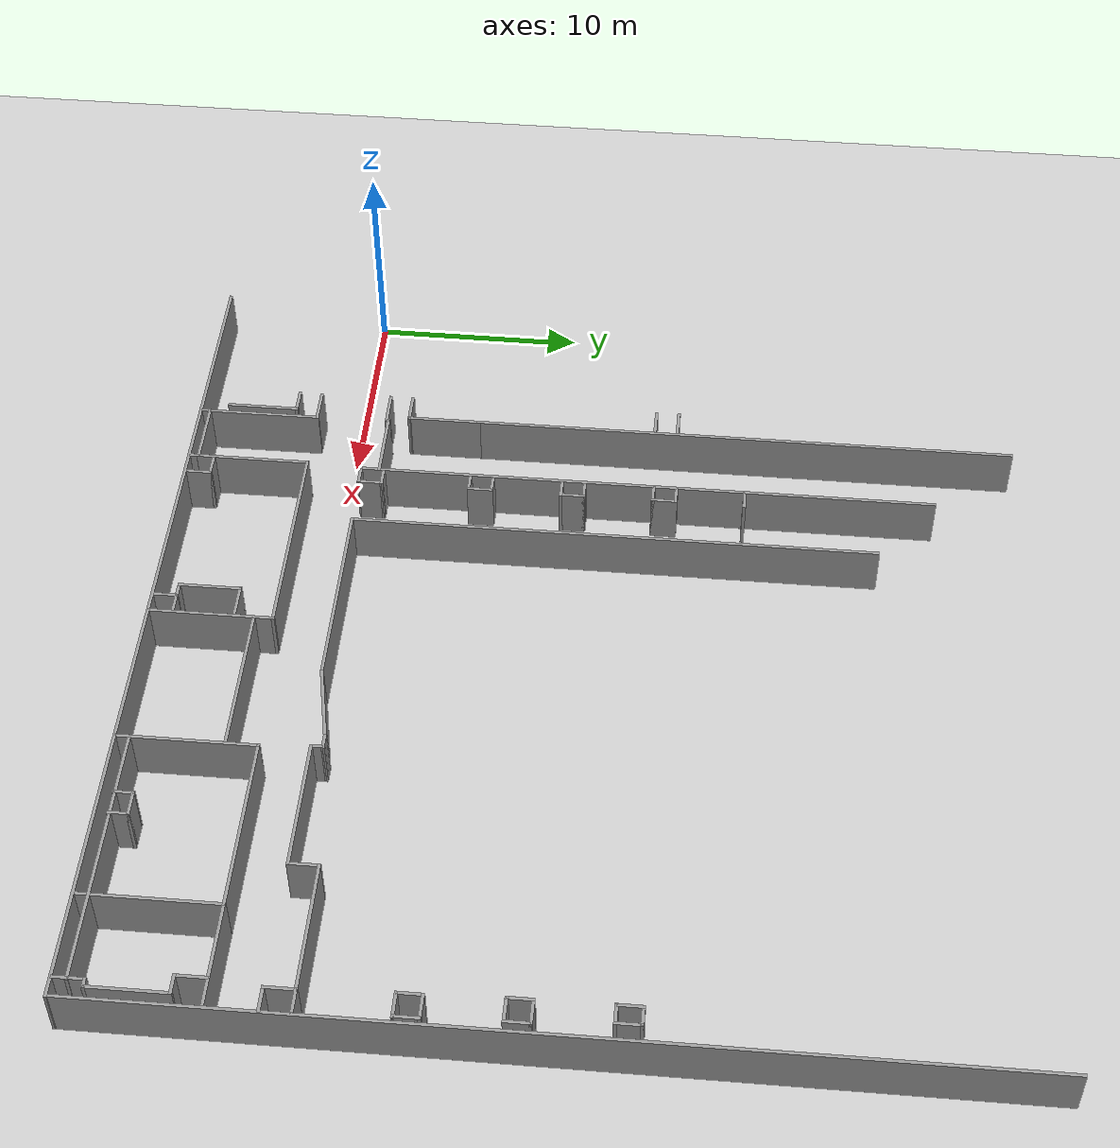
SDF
<sdf version="1.7">
 <world name="default">
  <model name="ground_plane">
   <static>1</static>
   <link name="link">
    <collision name="collision">
     <geometry><plane><normal>0 0 1</normal><size>100 100</size></plane></geometry>
     <surface>
      <contact><collide_bitmask>65535</collide_bitmask></contact>
      <friction><ode><mu>100</mu><mu2>50</mu2></ode></friction>
     </surface>
    </collision>
    <visual name="visual">
     <cast_shadows>0</cast_shadows>
     <geometry><plane><normal>0 0 1</normal><size>100 100</size></plane></geometry>
     <material>
      <script><uri>file://media/materials/scripts/gazebo.material</uri><name>Gazebo/Grey</name></script>
     </material>
    </visual>
   </link>
  </model>
  <model name="Tsudanuma_2-3-without_door">
   <pose>11.8595 12.3796 0 0 -0 0</pose>
   <link name="Wall_10">
    <collision name="Wall_10_Collision">
     <geometry><box><size>42.1591 0.15 2.5</size></box></geometry>
     <pose>0 0 1.25 0 -0 0</pose>
    </collision>
    <visual name="Wall_10_Visual">
     <pose>0 0 1.25 0 -0 0</pose>
     <geometry><box><size>42.1591 0.15 2.5</size></box></geometry>
     <material>
      <script><uri>file://media/materials/scripts/gazebo.material</uri><name>Gazebo/Grey</name></script>
      <ambient>1 1 1 1</ambient>
     </material>
     <meta><layer>0</layer></meta>
    </visual>
    <pose>9.87341 -20.1767 0 0 -0 -0.000631</pose>
   </link>
   <link name="Wall_11">
    <collision name="Wall_11_Collision">
     <geometry><box><size>42 0.15 2.5</size></box></geometry>
     <pose>0 0 1.25 0 -0 0</pose>
    </collision>
    <visual name="Wall_11_Visual">
     <pose>0 0 1.25 0 -0 0</pose>
     <geometry><box><size>42 0.15 2.5</size></box></geometry>
     <material>
      <script><uri>file://media/materials/scripts/gazebo.material</uri><name>Gazebo/Grey</name></script>
      <ambient>1 1 1 1</ambient>
     </material>
     <meta><layer>0</layer></meta>
    </visual>
    <pose>30.8779 0.735038 0 0 -0 1.5708</pose>
   </link>
   <link name="Wall_200">
    <collision name="Wall_200_Collision">
     <geometry><box><size>3.5 0.15 2.5</size></box></geometry>
     <pose>0 0 1.25 0 -0 0</pose>
    </collision>
    <visual name="Wall_200_Visual">
     <pose>0 0 1.25 0 -0 0</pose>
     <geometry><box><size>3.5 0.15 2.5</size></box></geometry>
     <material>
      <script><uri>file://media/materials/scripts/gazebo.material</uri><name>Gazebo/Grey</name></script>
      <ambient>1 1 1 1</ambient>
     </material>
     <meta><layer>0</layer></meta>
    </visual>
    <pose>-3.33112 -17.1385 0 0 -0 1.5708</pose>
   </link>
   <link name="Wall_201">
    <collision name="Wall_201_Collision">
     <geometry><box><size>1.25 0.15 2.5</size></box></geometry>
     <pose>0 0 1.25 0 -0 0</pose>
    </collision>
    <visual name="Wall_201_Visual">
     <pose>0 0 1.25 0 -0 0</pose>
     <geometry><box><size>1.25 0.15 2.5</size></box></geometry>
     <material>
      <script><uri>file://media/materials/scripts/gazebo.material</uri><name>Gazebo/Grey</name></script>
      <ambient>1 1 1 1</ambient>
     </material>
     <meta><layer>0</layer></meta>
    </visual>
    <pose>-3.88112 -15.4635 0 0 -0 3.14159</pose>
   </link>
   <link name="Wall_203">
    <collision name="Wall_203_Collision">
     <geometry><box><size>1.75 0.15 2.5</size></box></geometry>
     <pose>0 0 1.25 0 -0 0</pose>
    </collision>
    <visual name="Wall_203_Visual">
     <pose>0 0 1.25 0 -0 0</pose>
     <geometry><box><size>1.75 0.15 2.5</size></box></geometry>
     <material>
      <script><uri>file://media/materials/scripts/gazebo.material</uri><name>Gazebo/Grey</name></script>
      <ambient>1 1 1 1</ambient>
     </material>
     <meta><layer>0</layer></meta>
    </visual>
    <pose>-3.63112 -14.3635 0 0 -0 0</pose>
   </link>
   <link name="Wall_204">
    <collision name="Wall_204_Collision">
     <geometry><box><size>5.5 0.15 2.5</size></box></geometry>
     <pose>0 0 1.25 0 -0 0</pose>
    </collision>
    <visual name="Wall_204_Visual">
     <pose>0 0 1.25 0 -0 0</pose>
     <geometry><box><size>5.5 0.15 2.5</size></box></geometry>
     <material>
      <script><uri>file://media/materials/scripts/gazebo.material</uri><name>Gazebo/Grey</name></script>
      <ambient>1 1 1 1</ambient>
     </material>
     <meta><layer>0</layer></meta>
    </visual>
    <pose>-2.83112 -17.0385 0 0 -0 -1.5708</pose>
   </link>
   <link name="Wall_205">
    <collision name="Wall_205_Collision">
     <geometry><box><size>3.25 0.15 2.5</size></box></geometry>
     <pose>0 0 1.25 0 -0 0</pose>
    </collision>
    <visual name="Wall_205_Visual">
     <pose>0 0 1.25 0 -0 0</pose>
     <geometry><box><size>3.25 0.15 2.5</size></box></geometry>
     <material>
      <script><uri>file://media/materials/scripts/gazebo.material</uri><name>Gazebo/Grey</name></script>
      <ambient>1 1 1 1</ambient>
     </material>
     <meta><layer>0</layer></meta>
    </visual>
    <pose>-1.28112 -19.7135 0 0 -0 0</pose>
   </link>
   <link name="Wall_206">
    <collision name="Wall_206_Collision">
     <geometry><box><size>5.5 0.15 2.5</size></box></geometry>
     <pose>0 0 1.25 0 -0 0</pose>
    </collision>
    <visual name="Wall_206_Visual">
     <pose>0 0 1.25 0 -0 0</pose>
     <geometry><box><size>5.5 0.15 2.5</size></box></geometry>
     <material>
      <script><uri>file://media/materials/scripts/gazebo.material</uri><name>Gazebo/Grey</name></script>
      <ambient>1 1 1 1</ambient>
     </material>
     <meta><layer>0</layer></meta>
    </visual>
    <pose>0.268879 -17.0385 0 0 -0 1.5708</pose>
   </link>
   <link name="Wall_207">
    <collision name="Wall_207_Collision">
     <geometry><box><size>10.1133 0.15 2.5</size></box></geometry>
     <pose>0 0 1.25 0 -0 0</pose>
    </collision>
    <visual name="Wall_207_Visual">
     <pose>0 0 1.25 0 -0 0</pose>
     <geometry><box><size>10.1133 0.15 2.5</size></box></geometry>
     <material>
      <script><uri>file://media/materials/scripts/gazebo.material</uri><name>Gazebo/Grey</name></script>
      <ambient>1 1 1 1</ambient>
     </material>
     <meta><layer>0</layer></meta>
    </visual>
    <pose>5.25051 -14.3635 0 0 -0 0</pose>
   </link>
   <link name="Wall_209">
    <collision name="Wall_209_Collision">
     <geometry><box><size>5.9 0.15 2.5</size></box></geometry>
     <pose>0 0 1.25 0 -0 0</pose>
    </collision>
    <visual name="Wall_209_Visual">
     <pose>0 0 1.25 0 -0 0</pose>
     <geometry><box><size>5.9 0.15 2.5</size></box></geometry>
     <material>
      <script><uri>file://media/materials/scripts/gazebo.material</uri><name>Gazebo/Grey</name></script>
      <ambient>1 1 1 1</ambient>
     </material>
     <meta><layer>0</layer></meta>
    </visual>
    <pose>10.2321 -17.2385 0 0 -0 -1.5708</pose>
   </link>
   <link name="Wall_211">
    <collision name="Wall_211_Collision">
     <geometry><box><size>7.25 0.15 2.5</size></box></geometry>
     <pose>0 0 1.25 0 -0 0</pose>
    </collision>
    <visual name="Wall_211_Visual">
     <pose>0 0 1.25 0 -0 0</pose>
     <geometry><box><size>7.25 0.15 2.5</size></box></geometry>
     <material>
      <script><uri>file://media/materials/scripts/gazebo.material</uri><name>Gazebo/Grey</name></script>
      <ambient>1 1 1 1</ambient>
     </material>
     <meta><layer>0</layer></meta>
    </visual>
    <pose>13.852 -15.2435 0 0 -0 0</pose>
   </link>
   <link name="Wall_213">
    <collision name="Wall_213_Collision">
     <geometry><box><size>6.5 0.15 2.5</size></box></geometry>
     <pose>0 0 1.25 0 -0 0</pose>
    </collision>
    <visual name="Wall_213_Visual">
     <pose>0 0 1.25 0 -0 0</pose>
     <geometry><box><size>6.5 0.15 2.5</size></box></geometry>
     <material>
      <script><uri>file://media/materials/scripts/gazebo.material</uri><name>Gazebo/Grey</name></script>
      <ambient>1 1 1 1</ambient>
     </material>
     <meta><layer>0</layer></meta>
    </visual>
    <pose>17.5393 -16.9464 0 0 -0 1.5708</pose>
   </link>
   <link name="Wall_215">
    <collision name="Wall_215_Collision">
     <geometry><box><size>8.5 0.15 2.5</size></box></geometry>
     <pose>0 0 1.25 0 -0 0</pose>
    </collision>
    <visual name="Wall_215_Visual">
     <pose>0 0 1.25 0 -0 0</pose>
     <geometry><box><size>8.5 0.15 2.5</size></box></geometry>
     <material>
      <script><uri>file://media/materials/scripts/gazebo.material</uri><name>Gazebo/Grey</name></script>
      <ambient>1 1 1 1</ambient>
     </material>
     <meta><layer>0</layer></meta>
    </visual>
    <pose>21.7143 -13.7714 0 0 -0 0</pose>
   </link>
   <link name="Wall_216">
    <collision name="Wall_216_Collision">
     <geometry><box><size>6.5 0.15 2.5</size></box></geometry>
     <pose>0 0 1.25 0 -0 0</pose>
    </collision>
    <visual name="Wall_216_Visual">
     <pose>0 0 1.25 0 -0 0</pose>
     <geometry><box><size>6.5 0.15 2.5</size></box></geometry>
     <material>
      <script><uri>file://media/materials/scripts/gazebo.material</uri><name>Gazebo/Grey</name></script>
      <ambient>1 1 1 1</ambient>
     </material>
     <meta><layer>0</layer></meta>
    </visual>
    <pose>25.8893 -16.9464 0 0 -0 -1.5708</pose>
   </link>
   <link name="Wall_218">
    <collision name="Wall_218_Collision">
     <geometry><box><size>5 0.15 2.5</size></box></geometry>
     <pose>0 0 1.25 0 -0 0</pose>
    </collision>
    <visual name="Wall_218_Visual">
     <pose>0 0 1.25 0 -0 0</pose>
     <geometry><box><size>5 0.15 2.5</size></box></geometry>
     <material>
      <script><uri>file://media/materials/scripts/gazebo.material</uri><name>Gazebo/Grey</name></script>
      <ambient>1 1 1 1</ambient>
     </material>
     <meta><layer>0</layer></meta>
    </visual>
    <pose>28.3143 -13.7714 0 0 -0 0</pose>
   </link>
   <link name="Wall_220">
    <collision name="Wall_220_Collision">
     <geometry><box><size>1.48998 0.15 2.5</size></box></geometry>
     <pose>0 0 1.25 0 -0 0</pose>
    </collision>
    <visual name="Wall_220_Visual">
     <pose>0 0 1.25 0 -0 0</pose>
     <geometry><box><size>1.48998 0.15 2.5</size></box></geometry>
     <material>
      <script><uri>file://media/materials/scripts/gazebo.material</uri><name>Gazebo/Grey</name></script>
      <ambient>1 1 1 1</ambient>
     </material>
     <meta><layer>0</layer></meta>
    </visual>
    <pose>23.6117 -10.7807 0 0 -0 1.5708</pose>
   </link>
   <link name="Wall_221">
    <collision name="Wall_221_Collision">
     <geometry><box><size>6.25 0.15 2.5</size></box></geometry>
     <pose>0 0 1.25 0 -0 0</pose>
    </collision>
    <visual name="Wall_221_Visual">
     <pose>0 0 1.25 0 -0 0</pose>
     <geometry><box><size>6.25 0.15 2.5</size></box></geometry>
     <material>
      <script><uri>file://media/materials/scripts/gazebo.material</uri><name>Gazebo/Grey</name></script>
      <ambient>1 1 1 1</ambient>
     </material>
     <meta><layer>0</layer></meta>
    </visual>
    <pose>26.6617 -10.1108 0 0 -0 0</pose>
   </link>
   <link name="Wall_222">
    <collision name="Wall_222_Collision">
     <geometry><box><size>1.5 0.15 2.5</size></box></geometry>
     <pose>0 0 1.25 0 -0 0</pose>
    </collision>
    <visual name="Wall_222_Visual">
     <pose>0 0 1.25 0 -0 0</pose>
     <geometry><box><size>1.5 0.15 2.5</size></box></geometry>
     <material>
      <script><uri>file://media/materials/scripts/gazebo.material</uri><name>Gazebo/Grey</name></script>
      <ambient>1 1 1 1</ambient>
     </material>
     <meta><layer>0</layer></meta>
    </visual>
    <pose>29.7117 -10.7858 0 0 -0 -1.5708</pose>
   </link>
   <link name="Wall_223">
    <collision name="Wall_223_Collision">
     <geometry><box><size>1.25 0.15 2.5</size></box></geometry>
     <pose>0 0 1.25 0 -0 0</pose>
    </collision>
    <visual name="Wall_223_Visual">
     <pose>0 0 1.25 0 -0 0</pose>
     <geometry><box><size>1.25 0.15 2.5</size></box></geometry>
     <material>
      <script><uri>file://media/materials/scripts/gazebo.material</uri><name>Gazebo/Grey</name></script>
      <ambient>1 1 1 1</ambient>
     </material>
     <meta><layer>0</layer></meta>
    </visual>
    <pose>30.2617 -11.4608 0 0 -0 0</pose>
   </link>
   <link name="Wall_225">
    <collision name="Wall_225_Collision">
     <geometry><box><size>6.4 0.15 2.5</size></box></geometry>
     <pose>0 0 1.25 0 -0 0</pose>
    </collision>
    <visual name="Wall_225_Visual">
     <pose>0 0 1.25 0 -0 0</pose>
     <geometry><box><size>6.4 0.15 2.5</size></box></geometry>
     <material>
      <script><uri>file://media/materials/scripts/gazebo.material</uri><name>Gazebo/Grey</name></script>
      <ambient>1 1 1 1</ambient>
     </material>
     <meta><layer>0</layer></meta>
    </visual>
    <pose>20.4867 -11.4507 0 0 -0 3.14159</pose>
   </link>
   <link name="Wall_227">
    <collision name="Wall_227_Collision">
     <geometry><box><size>0.75 0.15 2.5</size></box></geometry>
     <pose>0 0 1.25 0 -0 0</pose>
    </collision>
    <visual name="Wall_227_Visual">
     <pose>0 0 1.25 0 -0 0</pose>
     <geometry><box><size>0.75 0.15 2.5</size></box></geometry>
     <material>
      <script><uri>file://media/materials/scripts/gazebo.material</uri><name>Gazebo/Grey</name></script>
      <ambient>1 1 1 1</ambient>
     </material>
     <meta><layer>0</layer></meta>
    </visual>
    <pose>17.0623 -10.9296 0 0 -0 0</pose>
   </link>
   <link name="Wall_229">
    <collision name="Wall_229_Collision">
     <geometry><box><size>0.67111 0.15 2.5</size></box></geometry>
     <pose>0 0 1.25 0 -0 0</pose>
    </collision>
    <visual name="Wall_229_Visual">
     <pose>0 0 1.25 0 -0 0</pose>
     <geometry><box><size>0.67111 0.15 2.5</size></box></geometry>
     <material>
      <script><uri>file://media/materials/scripts/gazebo.material</uri><name>Gazebo/Grey</name></script>
      <ambient>1 1 1 1</ambient>
     </material>
     <meta><layer>0</layer></meta>
    </visual>
    <pose>17.362 -11.1902 0 0 -0 1.56961</pose>
   </link>
   <link name="Wall_231">
    <collision name="Wall_231_Collision">
     <geometry><box><size>3.8474 0.15 2.5</size></box></geometry>
     <pose>0 0 1.25 0 -0 0</pose>
    </collision>
    <visual name="Wall_231_Visual">
     <pose>0 0 1.25 0 -0 0</pose>
     <geometry><box><size>3.8474 0.15 2.5</size></box></geometry>
     <material>
      <script><uri>file://media/materials/scripts/gazebo.material</uri><name>Gazebo/Grey</name></script>
      <ambient>1 1 1 1</ambient>
     </material>
     <meta><layer>0</layer></meta>
    </visual>
    <pose>14.9482 -11.2854 0 0 -0 0.193674</pose>
   </link>
   <link name="Wall_234">
    <collision name="Wall_234_Collision">
     <geometry><box><size>9.5 0.15 2.5</size></box></geometry>
     <pose>0 0 1.25 0 -0 0</pose>
    </collision>
    <visual name="Wall_234_Visual">
     <pose>0 0 1.25 0 -0 0</pose>
     <geometry><box><size>9.5 0.15 2.5</size></box></geometry>
     <material>
      <script><uri>file://media/materials/scripts/gazebo.material</uri><name>Gazebo/Grey</name></script>
      <ambient>1 1 1 1</ambient>
     </material>
     <meta><layer>0</layer></meta>
    </visual>
    <pose>8.45905 -11.6412 0 0 -0 3.14159</pose>
   </link>
   <link name="Wall_235">
    <collision name="Wall_235_Collision">
     <geometry><box><size>25.1 0.15 2.5</size></box></geometry>
     <pose>0 0 1.25 0 -0 0</pose>
    </collision>
    <visual name="Wall_235_Visual">
     <pose>0 0 1.25 0 -0 0</pose>
     <geometry><box><size>25.1 0.15 2.5</size></box></geometry>
     <material>
      <script><uri>file://media/materials/scripts/gazebo.material</uri><name>Gazebo/Grey</name></script>
      <ambient>1 1 1 1</ambient>
     </material>
     <meta><layer>0</layer></meta>
    </visual>
    <pose>3.78405 0.833759 0 0 -0 1.5708</pose>
   </link>
   <link name="Wall_339">
    <collision name="Wall_339_Collision">
     <geometry><box><size>27.75 0.15 2.5</size></box></geometry>
     <pose>0 0 1.25 0 -0 0</pose>
    </collision>
    <visual name="Wall_339_Visual">
     <pose>0 0 1.25 0 -0 0</pose>
     <geometry><box><size>27.75 0.15 2.5</size></box></geometry>
     <material>
      <script><uri>file://media/materials/scripts/gazebo.material</uri><name>Gazebo/Grey</name></script>
      <ambient>1 1 1 1</ambient>
     </material>
     <meta><layer>0</layer></meta>
    </visual>
    <pose>0.419704 2.17218 0 0 -0 -1.5708</pose>
   </link>
   <link name="Wall_347">
    <collision name="Wall_347_Collision">
     <geometry><box><size>1 0.15 2.5</size></box></geometry>
     <pose>0 0 1.25 0 -0 0</pose>
    </collision>
    <visual name="Wall_347_Visual">
     <pose>0 0 1.25 0 -0 0</pose>
     <geometry><box><size>1 0.15 2.5</size></box></geometry>
     <material>
      <script><uri>file://media/materials/scripts/gazebo.material</uri><name>Gazebo/Grey</name></script>
      <ambient>1 1 1 1</ambient>
     </material>
     <meta><layer>0</layer></meta>
    </visual>
    <pose>0.915055 6.91213 0 0 -0 3.14159</pose>
   </link>
   <link name="Wall_349">
    <collision name="Wall_349_Collision">
     <geometry><box><size>1 0.15 2.5</size></box></geometry>
     <pose>0 0 1.25 0 -0 0</pose>
    </collision>
    <visual name="Wall_349_Visual">
     <pose>0 0 1.25 0 -0 0</pose>
     <geometry><box><size>1 0.15 2.5</size></box></geometry>
     <material>
      <script><uri>file://media/materials/scripts/gazebo.material</uri><name>Gazebo/Grey</name></script>
      <ambient>1 1 1 1</ambient>
     </material>
     <meta><layer>0</layer></meta>
    </visual>
    <pose>0.854918 3.62212 0 0 -0 0</pose>
   </link>
   <link name="Wall_350">
    <collision name="Wall_350_Collision">
     <geometry><box><size>1.25 0.15 2.5</size></box></geometry>
     <pose>0 0 1.25 0 -0 0</pose>
    </collision>
    <visual name="Wall_350_Visual">
     <pose>0 0 1.25 0 -0 0</pose>
     <geometry><box><size>1.25 0.15 2.5</size></box></geometry>
     <material>
      <script><uri>file://media/materials/scripts/gazebo.material</uri><name>Gazebo/Grey</name></script>
      <ambient>1 1 1 1</ambient>
     </material>
     <meta><layer>0</layer></meta>
    </visual>
    <pose>1.27992 3.07212 0 0 -0 -1.5708</pose>
   </link>
   <link name="Wall_351">
    <collision name="Wall_351_Collision">
     <geometry><box><size>1 0.15 2.5</size></box></geometry>
     <pose>0 0 1.25 0 -0 0</pose>
    </collision>
    <visual name="Wall_351_Visual">
     <pose>0 0 1.25 0 -0 0</pose>
     <geometry><box><size>1 0.15 2.5</size></box></geometry>
     <material>
      <script><uri>file://media/materials/scripts/gazebo.material</uri><name>Gazebo/Grey</name></script>
      <ambient>1 1 1 1</ambient>
     </material>
     <meta><layer>0</layer></meta>
    </visual>
    <pose>0.854918 2.52212 0 0 -0 3.14159</pose>
   </link>
   <link name="Wall_353">
    <collision name="Wall_353_Collision">
     <geometry><box><size>1 0.15 2.5</size></box></geometry>
     <pose>0 0 1.25 0 -0 0</pose>
    </collision>
    <visual name="Wall_353_Visual">
     <pose>0 0 1.25 0 -0 0</pose>
     <geometry><box><size>1 0.15 2.5</size></box></geometry>
     <material>
      <script><uri>file://media/materials/scripts/gazebo.material</uri><name>Gazebo/Grey</name></script>
      <ambient>1 1 1 1</ambient>
     </material>
     <meta><layer>0</layer></meta>
    </visual>
    <pose>0.900021 -0.79795 0 0 -0 0</pose>
   </link>
   <link name="Wall_354">
    <collision name="Wall_354_Collision">
     <geometry><box><size>1.25 0.15 2.5</size></box></geometry>
     <pose>0 0 1.25 0 -0 0</pose>
    </collision>
    <visual name="Wall_354_Visual">
     <pose>0 0 1.25 0 -0 0</pose>
     <geometry><box><size>1.25 0.15 2.5</size></box></geometry>
     <material>
      <script><uri>file://media/materials/scripts/gazebo.material</uri><name>Gazebo/Grey</name></script>
      <ambient>1 1 1 1</ambient>
     </material>
     <meta><layer>0</layer></meta>
    </visual>
    <pose>1.32502 -1.34795 0 0 -0 -1.5708</pose>
   </link>
   <link name="Wall_355">
    <collision name="Wall_355_Collision">
     <geometry><box><size>1 0.15 2.5</size></box></geometry>
     <pose>0 0 1.25 0 -0 0</pose>
    </collision>
    <visual name="Wall_355_Visual">
     <pose>0 0 1.25 0 -0 0</pose>
     <geometry><box><size>1 0.15 2.5</size></box></geometry>
     <material>
      <script><uri>file://media/materials/scripts/gazebo.material</uri><name>Gazebo/Grey</name></script>
      <ambient>1 1 1 1</ambient>
     </material>
     <meta><layer>0</layer></meta>
    </visual>
    <pose>0.900021 -1.89795 0 0 -0 3.14159</pose>
   </link>
   <link name="Wall_357">
    <collision name="Wall_357_Collision">
     <geometry><box><size>1 0.15 2.5</size></box></geometry>
     <pose>0 0 1.25 0 -0 0</pose>
    </collision>
    <visual name="Wall_357_Visual">
     <pose>0 0 1.25 0 -0 0</pose>
     <geometry><box><size>1 0.15 2.5</size></box></geometry>
     <material>
      <script><uri>file://media/materials/scripts/gazebo.material</uri><name>Gazebo/Grey</name></script>
      <ambient>1 1 1 1</ambient>
     </material>
     <meta><layer>0</layer></meta>
    </visual>
    <pose>0.884987 -5.24809 0 0 -0 0</pose>
   </link>
   <link name="Wall_358">
    <collision name="Wall_358_Collision">
     <geometry><box><size>1.25 0.15 2.5</size></box></geometry>
     <pose>0 0 1.25 0 -0 0</pose>
    </collision>
    <visual name="Wall_358_Visual">
     <pose>0 0 1.25 0 -0 0</pose>
     <geometry><box><size>1.25 0.15 2.5</size></box></geometry>
     <material>
      <script><uri>file://media/materials/scripts/gazebo.material</uri><name>Gazebo/Grey</name></script>
      <ambient>1 1 1 1</ambient>
     </material>
     <meta><layer>0</layer></meta>
    </visual>
    <pose>1.30999 -5.79809 0 0 -0 -1.5708</pose>
   </link>
   <link name="Wall_359">
    <collision name="Wall_359_Collision">
     <geometry><box><size>1 0.15 2.5</size></box></geometry>
     <pose>0 0 1.25 0 -0 0</pose>
    </collision>
    <visual name="Wall_359_Visual">
     <pose>0 0 1.25 0 -0 0</pose>
     <geometry><box><size>1 0.15 2.5</size></box></geometry>
     <material>
      <script><uri>file://media/materials/scripts/gazebo.material</uri><name>Gazebo/Grey</name></script>
      <ambient>1 1 1 1</ambient>
     </material>
     <meta><layer>0</layer></meta>
    </visual>
    <pose>0.884987 -6.34809 0 0 -0 3.14159</pose>
   </link>
   <link name="Wall_361">
    <collision name="Wall_361_Collision">
     <geometry><box><size>1 0.15 2.5</size></box></geometry>
     <pose>0 0 1.25 0 -0 0</pose>
    </collision>
    <visual name="Wall_361_Visual">
     <pose>0 0 1.25 0 -0 0</pose>
     <geometry><box><size>1 0.15 2.5</size></box></geometry>
     <material>
      <script><uri>file://media/materials/scripts/gazebo.material</uri><name>Gazebo/Grey</name></script>
      <ambient>1 1 1 1</ambient>
     </material>
     <meta><layer>0</layer></meta>
    </visual>
    <pose>0.869952 -10.5853 0 0 -0 0</pose>
   </link>
   <link name="Wall_362">
    <collision name="Wall_362_Collision">
     <geometry><box><size>1.25572 0.15 2.5</size></box></geometry>
     <pose>0 0 1.25 0 -0 0</pose>
    </collision>
    <visual name="Wall_362_Visual">
     <pose>0 0 1.25 0 -0 0</pose>
     <geometry><box><size>1.25572 0.15 2.5</size></box></geometry>
     <material>
      <script><uri>file://media/materials/scripts/gazebo.material</uri><name>Gazebo/Grey</name></script>
      <ambient>1 1 1 1</ambient>
     </material>
     <meta><layer>0</layer></meta>
    </visual>
    <pose>1.29353 -11.1381 0 0 -0 -1.57337</pose>
   </link>
   <link name="Wall_365">
    <collision name="Wall_365_Collision">
     <geometry><box><size>1.03 0.15 2.5</size></box></geometry>
     <pose>0 0 1.25 0 -0 0</pose>
    </collision>
    <visual name="Wall_365_Visual">
     <pose>0 0 1.25 0 -0 0</pose>
     <geometry><box><size>1.03 0.15 2.5</size></box></geometry>
     <material>
      <script><uri>file://media/materials/scripts/gazebo.material</uri><name>Gazebo/Grey</name></script>
      <ambient>1 1 1 1</ambient>
     </material>
     <meta><layer>0</layer></meta>
    </visual>
    <pose>0.85211 -11.6909 0 0 -0 3.14159</pose>
   </link>
   <link name="Wall_374">
    <collision name="Wall_374_Collision">
     <geometry><box><size>1 0.15 2.5</size></box></geometry>
     <pose>0 0 1.25 0 -0 0</pose>
    </collision>
    <visual name="Wall_374_Visual">
     <pose>0 0 1.25 0 -0 0</pose>
     <geometry><box><size>1 0.15 2.5</size></box></geometry>
     <material>
      <script><uri>file://media/materials/scripts/gazebo.material</uri><name>Gazebo/Grey</name></script>
      <ambient>1 1 1 1</ambient>
     </material>
     <meta><layer>0</layer></meta>
    </visual>
    <pose>29.7061 4.03145 0 0 -0 0</pose>
   </link>
   <link name="Wall_375">
    <collision name="Wall_375_Collision">
     <geometry><box><size>1.25 0.15 2.5</size></box></geometry>
     <pose>0 0 1.25 0 -0 0</pose>
    </collision>
    <visual name="Wall_375_Visual">
     <pose>0 0 1.25 0 -0 0</pose>
     <geometry><box><size>1.25 0.15 2.5</size></box></geometry>
     <material>
      <script><uri>file://media/materials/scripts/gazebo.material</uri><name>Gazebo/Grey</name></script>
      <ambient>1 1 1 1</ambient>
     </material>
     <meta><layer>0</layer></meta>
    </visual>
    <pose>30.1311 3.48145 0 0 -0 -1.5708</pose>
   </link>
   <link name="Wall_376">
    <collision name="Wall_376_Collision">
     <geometry><box><size>1 0.15 2.5</size></box></geometry>
     <pose>0 0 1.25 0 -0 0</pose>
    </collision>
    <visual name="Wall_376_Visual">
     <pose>0 0 1.25 0 -0 0</pose>
     <geometry><box><size>1 0.15 2.5</size></box></geometry>
     <material>
      <script><uri>file://media/materials/scripts/gazebo.material</uri><name>Gazebo/Grey</name></script>
      <ambient>1 1 1 1</ambient>
     </material>
     <meta><layer>0</layer></meta>
    </visual>
    <pose>29.7061 2.93145 0 0 -0 3.14159</pose>
   </link>
   <link name="Wall_377">
    <collision name="Wall_377_Collision">
     <geometry><box><size>1.25 0.15 2.5</size></box></geometry>
     <pose>0 0 1.25 0 -0 0</pose>
    </collision>
    <visual name="Wall_377_Visual">
     <pose>0 0 1.25 0 -0 0</pose>
     <geometry><box><size>1.25 0.15 2.5</size></box></geometry>
     <material>
      <script><uri>file://media/materials/scripts/gazebo.material</uri><name>Gazebo/Grey</name></script>
      <ambient>1 1 1 1</ambient>
     </material>
     <meta><layer>0</layer></meta>
    </visual>
    <pose>29.2811 3.48145 0 0 -0 1.5708</pose>
   </link>
   <link name="Wall_379">
    <collision name="Wall_379_Collision">
     <geometry><box><size>1.25 0.15 2.5</size></box></geometry>
     <pose>0 0 1.25 0 -0 0</pose>
    </collision>
    <visual name="Wall_379_Visual">
     <pose>0 0 1.25 0 -0 0</pose>
     <geometry><box><size>1.25 0.15 2.5</size></box></geometry>
     <material>
      <script><uri>file://media/materials/scripts/gazebo.material</uri><name>Gazebo/Grey</name></script>
      <ambient>1 1 1 1</ambient>
     </material>
     <meta><layer>0</layer></meta>
    </visual>
    <pose>29.8907 -0.442181 0 0 -0 0</pose>
   </link>
   <link name="Wall_380">
    <collision name="Wall_380_Collision">
     <geometry><box><size>1.25 0.15 2.5</size></box></geometry>
     <pose>0 0 1.25 0 -0 0</pose>
    </collision>
    <visual name="Wall_380_Visual">
     <pose>0 0 1.25 0 -0 0</pose>
     <geometry><box><size>1.25 0.15 2.5</size></box></geometry>
     <material>
      <script><uri>file://media/materials/scripts/gazebo.material</uri><name>Gazebo/Grey</name></script>
      <ambient>1 1 1 1</ambient>
     </material>
     <meta><layer>0</layer></meta>
    </visual>
    <pose>30.4407 -0.992181 0 0 -0 -1.5708</pose>
   </link>
   <link name="Wall_381">
    <collision name="Wall_381_Collision">
     <geometry><box><size>1.25 0.15 2.5</size></box></geometry>
     <pose>0 0 1.25 0 -0 0</pose>
    </collision>
    <visual name="Wall_381_Visual">
     <pose>0 0 1.25 0 -0 0</pose>
     <geometry><box><size>1.25 0.15 2.5</size></box></geometry>
     <material>
      <script><uri>file://media/materials/scripts/gazebo.material</uri><name>Gazebo/Grey</name></script>
      <ambient>1 1 1 1</ambient>
     </material>
     <meta><layer>0</layer></meta>
    </visual>
    <pose>29.8907 -1.54218 0 0 -0 3.14159</pose>
   </link>
   <link name="Wall_382">
    <collision name="Wall_382_Collision">
     <geometry><box><size>1.25 0.15 2.5</size></box></geometry>
     <pose>0 0 1.25 0 -0 0</pose>
    </collision>
    <visual name="Wall_382_Visual">
     <pose>0 0 1.25 0 -0 0</pose>
     <geometry><box><size>1.25 0.15 2.5</size></box></geometry>
     <material>
      <script><uri>file://media/materials/scripts/gazebo.material</uri><name>Gazebo/Grey</name></script>
      <ambient>1 1 1 1</ambient>
     </material>
     <meta><layer>0</layer></meta>
    </visual>
    <pose>29.3407 -0.992181 0 0 -0 1.5708</pose>
   </link>
   <link name="Wall_384">
    <collision name="Wall_384_Collision">
     <geometry><box><size>1.25 0.15 2.5</size></box></geometry>
     <pose>0 0 1.25 0 -0 0</pose>
    </collision>
    <visual name="Wall_384_Visual">
     <pose>0 0 1.25 0 -0 0</pose>
     <geometry><box><size>1.25 0.15 2.5</size></box></geometry>
     <material>
      <script><uri>file://media/materials/scripts/gazebo.material</uri><name>Gazebo/Grey</name></script>
      <ambient>1 1 1 1</ambient>
     </material>
     <meta><layer>0</layer></meta>
    </visual>
    <pose>30.0498 -4.9357 0 0 -0 0</pose>
   </link>
   <link name="Wall_385">
    <collision name="Wall_385_Collision">
     <geometry><box><size>1.25 0.15 2.5</size></box></geometry>
     <pose>0 0 1.25 0 -0 0</pose>
    </collision>
    <visual name="Wall_385_Visual">
     <pose>0 0 1.25 0 -0 0</pose>
     <geometry><box><size>1.25 0.15 2.5</size></box></geometry>
     <material>
      <script><uri>file://media/materials/scripts/gazebo.material</uri><name>Gazebo/Grey</name></script>
      <ambient>1 1 1 1</ambient>
     </material>
     <meta><layer>0</layer></meta>
    </visual>
    <pose>30.5998 -5.4857 0 0 -0 -1.5708</pose>
   </link>
   <link name="Wall_386">
    <collision name="Wall_386_Collision">
     <geometry><box><size>1.25 0.15 2.5</size></box></geometry>
     <pose>0 0 1.25 0 -0 0</pose>
    </collision>
    <visual name="Wall_386_Visual">
     <pose>0 0 1.25 0 -0 0</pose>
     <geometry><box><size>1.25 0.15 2.5</size></box></geometry>
     <material>
      <script><uri>file://media/materials/scripts/gazebo.material</uri><name>Gazebo/Grey</name></script>
      <ambient>1 1 1 1</ambient>
     </material>
     <meta><layer>0</layer></meta>
    </visual>
    <pose>30.0498 -6.0357 0 0 -0 3.14159</pose>
   </link>
   <link name="Wall_387">
    <collision name="Wall_387_Collision">
     <geometry><box><size>1.25 0.15 2.5</size></box></geometry>
     <pose>0 0 1.25 0 -0 0</pose>
    </collision>
    <visual name="Wall_387_Visual">
     <pose>0 0 1.25 0 -0 0</pose>
     <geometry><box><size>1.25 0.15 2.5</size></box></geometry>
     <material>
      <script><uri>file://media/materials/scripts/gazebo.material</uri><name>Gazebo/Grey</name></script>
      <ambient>1 1 1 1</ambient>
     </material>
     <meta><layer>0</layer></meta>
    </visual>
    <pose>29.4998 -5.4857 0 0 -0 1.5708</pose>
   </link>
   <link name="Wall_389">
    <collision name="Wall_389_Collision">
     <geometry><box><size>1.25 0.15 2.5</size></box></geometry>
     <pose>0 0 1.25 0 -0 0</pose>
    </collision>
    <visual name="Wall_389_Visual">
     <pose>0 0 1.25 0 -0 0</pose>
     <geometry><box><size>1.25 0.15 2.5</size></box></geometry>
     <material>
      <script><uri>file://media/materials/scripts/gazebo.material</uri><name>Gazebo/Grey</name></script>
      <ambient>1 1 1 1</ambient>
     </material>
     <meta><layer>0</layer></meta>
    </visual>
    <pose>30.2617 -10.1108 0 0 -0 0</pose>
   </link>
   <link name="Wall_392">
    <collision name="Wall_392_Collision">
     <geometry><box><size>3.5 0.15 2.5</size></box></geometry>
     <pose>0 0 1.25 0 -0 0</pose>
    </collision>
    <visual name="Wall_392_Visual">
     <pose>0 0 1.25 0 -0 0</pose>
     <geometry><box><size>3.5 0.15 2.5</size></box></geometry>
     <material>
      <script><uri>file://media/materials/scripts/gazebo.material</uri><name>Gazebo/Grey</name></script>
      <ambient>1 1 1 1</ambient>
     </material>
     <meta><layer>0</layer></meta>
    </visual>
    <pose>-1.26061 -10.8154 0 0 -0 0</pose>
   </link>
   <link name="Wall_394">
    <collision name="Wall_394_Collision">
     <geometry><box><size>0.25 0.15 2.5</size></box></geometry>
     <pose>0 0 1.25 0 -0 0</pose>
    </collision>
    <visual name="Wall_394_Visual">
     <pose>0 0 1.25 0 -0 0</pose>
     <geometry><box><size>0.25 0.15 2.5</size></box></geometry>
     <material>
      <script><uri>file://media/materials/scripts/gazebo.material</uri><name>Gazebo/Grey</name></script>
      <ambient>1 1 1 1</ambient>
     </material>
     <meta><layer>0</layer></meta>
    </visual>
    <pose>-2.93561 -10.8654 0 0 -0 -1.5708</pose>
   </link>
   <link name="Wall_395">
    <collision name="Wall_395_Collision">
     <geometry><box><size>1.75 0.15 2.5</size></box></geometry>
     <pose>0 0 1.25 0 -0 0</pose>
    </collision>
    <visual name="Wall_395_Visual">
     <pose>0 0 1.25 0 -0 0</pose>
     <geometry><box><size>1.75 0.15 2.5</size></box></geometry>
     <material>
      <script><uri>file://media/materials/scripts/gazebo.material</uri><name>Gazebo/Grey</name></script>
      <ambient>1 1 1 1</ambient>
     </material>
     <meta><layer>0</layer></meta>
    </visual>
    <pose>-3.73561 -10.9154 0 0 -0 3.14159</pose>
   </link>
   <link name="Wall_397">
    <collision name="Wall_397_Collision">
     <geometry><box><size>1.5 0.15 2.5</size></box></geometry>
     <pose>0 0 1.25 0 -0 0</pose>
    </collision>
    <visual name="Wall_397_Visual">
     <pose>0 0 1.25 0 -0 0</pose>
     <geometry><box><size>1.5 0.15 2.5</size></box></geometry>
     <material>
      <script><uri>file://media/materials/scripts/gazebo.material</uri><name>Gazebo/Grey</name></script>
      <ambient>1 1 1 1</ambient>
     </material>
     <meta><layer>0</layer></meta>
    </visual>
    <pose>-3.86061 -9.81535 0 0 -0 0</pose>
   </link>
   <link name="Wall_399">
    <collision name="Wall_399_Collision">
     <geometry><box><size>3.59396 0.15 2.5</size></box></geometry>
     <pose>0 0 1.25 0 -0 0</pose>
    </collision>
    <visual name="Wall_399_Visual">
     <pose>0 0 1.25 0 -0 0</pose>
     <geometry><box><size>3.59396 0.15 2.5</size></box></geometry>
     <material>
      <script><uri>file://media/materials/scripts/gazebo.material</uri><name>Gazebo/Grey</name></script>
      <ambient>1 1 1 1</ambient>
     </material>
     <meta><layer>0</layer></meta>
    </visual>
    <pose>-3.18655 -8.09337 0 0 -0 1.57135</pose>
   </link>
   <link name="Wall_401">
    <collision name="Wall_401_Collision">
     <geometry><box><size>1.5 0.15 2.5</size></box></geometry>
     <pose>0 0 1.25 0 -0 0</pose>
    </collision>
    <visual name="Wall_401_Visual">
     <pose>0 0 1.25 0 -0 0</pose>
     <geometry><box><size>1.5 0.15 2.5</size></box></geometry>
     <material>
      <script><uri>file://media/materials/scripts/gazebo.material</uri><name>Gazebo/Grey</name></script>
      <ambient>1 1 1 1</ambient>
     </material>
     <meta><layer>0</layer></meta>
    </visual>
    <pose>29.4798 -14.4917 0 0 -0 -1.5708</pose>
   </link>
   <link name="Wall_402">
    <collision name="Wall_402_Collision">
     <geometry><box><size>1 0.15 2.5</size></box></geometry>
     <pose>0 0 1.25 0 -0 0</pose>
    </collision>
    <visual name="Wall_402_Visual">
     <pose>0 0 1.25 0 -0 0</pose>
     <geometry><box><size>1 0.15 2.5</size></box></geometry>
     <material>
      <script><uri>file://media/materials/scripts/gazebo.material</uri><name>Gazebo/Grey</name></script>
      <ambient>1 1 1 1</ambient>
     </material>
     <meta><layer>0</layer></meta>
    </visual>
    <pose>29.9048 -15.1667 0 0 -0 0</pose>
   </link>
   <link name="Wall_403">
    <collision name="Wall_403_Collision">
     <geometry><box><size>3.75 0.15 2.5</size></box></geometry>
     <pose>0 0 1.25 0 -0 0</pose>
    </collision>
    <visual name="Wall_403_Visual">
     <pose>0 0 1.25 0 -0 0</pose>
     <geometry><box><size>3.75 0.15 2.5</size></box></geometry>
     <material>
      <script><uri>file://media/materials/scripts/gazebo.material</uri><name>Gazebo/Grey</name></script>
      <ambient>1 1 1 1</ambient>
     </material>
     <meta><layer>0</layer></meta>
    </visual>
    <pose>30.3298 -16.9667 0 0 -0 -1.5708</pose>
   </link>
   <link name="Wall_404">
    <collision name="Wall_404_Collision">
     <geometry><box><size>0.5 0.15 2.5</size></box></geometry>
     <pose>0 0 1.25 0 -0 0</pose>
    </collision>
    <visual name="Wall_404_Visual">
     <pose>0 0 1.25 0 -0 0</pose>
     <geometry><box><size>0.5 0.15 2.5</size></box></geometry>
     <material>
      <script><uri>file://media/materials/scripts/gazebo.material</uri><name>Gazebo/Grey</name></script>
      <ambient>1 1 1 1</ambient>
     </material>
     <meta><layer>0</layer></meta>
    </visual>
    <pose>30.1548 -18.7667 0 0 -0 3.14159</pose>
   </link>
   <link name="Wall_405">
    <collision name="Wall_405_Collision">
     <geometry><box><size>1.5 0.15 2.5</size></box></geometry>
     <pose>0 0 1.25 0 -0 0</pose>
    </collision>
    <visual name="Wall_405_Visual">
     <pose>0 0 1.25 0 -0 0</pose>
     <geometry><box><size>1.5 0.15 2.5</size></box></geometry>
     <material>
      <script><uri>file://media/materials/scripts/gazebo.material</uri><name>Gazebo/Grey</name></script>
      <ambient>1 1 1 1</ambient>
     </material>
     <meta><layer>0</layer></meta>
    </visual>
    <pose>29.9798 -19.4417 0 0 -0 -1.5708</pose>
   </link>
   <link name="Wall_407">
    <collision name="Wall_407_Collision">
     <geometry><box><size>12.5 0.15 2.5</size></box></geometry>
     <pose>0 0 1.25 0 -0 0</pose>
    </collision>
    <visual name="Wall_407_Visual">
     <pose>0 0 1.25 0 -0 0</pose>
     <geometry><box><size>12.5 0.15 2.5</size></box></geometry>
     <material>
      <script><uri>file://media/materials/scripts/gazebo.material</uri><name>Gazebo/Grey</name></script>
      <ambient>1 1 1 1</ambient>
     </material>
     <meta><layer>0</layer></meta>
    </visual>
    <pose>23.8288 -19.5205 0 0 -0 3.14159</pose>
   </link>
   <link name="Wall_409">
    <collision name="Wall_409_Collision">
     <geometry><box><size>1 0.15 2.5</size></box></geometry>
     <pose>0 0 1.25 0 -0 0</pose>
    </collision>
    <visual name="Wall_409_Visual">
     <pose>0 0 1.25 0 -0 0</pose>
     <geometry><box><size>1 0.15 2.5</size></box></geometry>
     <material>
      <script><uri>file://media/materials/scripts/gazebo.material</uri><name>Gazebo/Grey</name></script>
      <ambient>1 1 1 1</ambient>
     </material>
     <meta><layer>0</layer></meta>
    </visual>
    <pose>20.5633 -19.1449 0 0 -0 1.5708</pose>
   </link>
   <link name="Wall_410">
    <collision name="Wall_410_Collision">
     <geometry><box><size>1.25 0.15 2.5</size></box></geometry>
     <pose>0 0 1.25 0 -0 0</pose>
    </collision>
    <visual name="Wall_410_Visual">
     <pose>0 0 1.25 0 -0 0</pose>
     <geometry><box><size>1.25 0.15 2.5</size></box></geometry>
     <material>
      <script><uri>file://media/materials/scripts/gazebo.material</uri><name>Gazebo/Grey</name></script>
      <ambient>1 1 1 1</ambient>
     </material>
     <meta><layer>0</layer></meta>
    </visual>
    <pose>21.1133 -18.7199 0 0 -0 0</pose>
   </link>
   <link name="Wall_411">
    <collision name="Wall_411_Collision">
     <geometry><box><size>1 0.15 2.5</size></box></geometry>
     <pose>0 0 1.25 0 -0 0</pose>
    </collision>
    <visual name="Wall_411_Visual">
     <pose>0 0 1.25 0 -0 0</pose>
     <geometry><box><size>1 0.15 2.5</size></box></geometry>
     <material>
      <script><uri>file://media/materials/scripts/gazebo.material</uri><name>Gazebo/Grey</name></script>
      <ambient>1 1 1 1</ambient>
     </material>
     <meta><layer>0</layer></meta>
    </visual>
    <pose>21.6633 -19.1449 0 0 -0 -1.5708</pose>
   </link>
   <link name="Wall_413">
    <collision name="Wall_413_Collision">
     <geometry><box><size>1.25 0.15 2.5</size></box></geometry>
     <pose>0 0 1.25 0 -0 0</pose>
    </collision>
    <visual name="Wall_413_Visual">
     <pose>0 0 1.25 0 -0 0</pose>
     <geometry><box><size>1.25 0.15 2.5</size></box></geometry>
     <material>
      <script><uri>file://media/materials/scripts/gazebo.material</uri><name>Gazebo/Grey</name></script>
      <ambient>1 1 1 1</ambient>
     </material>
     <meta><layer>0</layer></meta>
    </visual>
    <pose>9.24468 -19.5834 0 0 -0 1.5708</pose>
   </link>
   <link name="Wall_414">
    <collision name="Wall_414_Collision">
     <geometry><box><size>1 0.15 2.5</size></box></geometry>
     <pose>0 0 1.25 0 -0 0</pose>
    </collision>
    <visual name="Wall_414_Visual">
     <pose>0 0 1.25 0 -0 0</pose>
     <geometry><box><size>1 0.15 2.5</size></box></geometry>
     <material>
      <script><uri>file://media/materials/scripts/gazebo.material</uri><name>Gazebo/Grey</name></script>
      <ambient>1 1 1 1</ambient>
     </material>
     <meta><layer>0</layer></meta>
    </visual>
    <pose>9.66968 -19.0334 0 0 -0 0</pose>
   </link>
   <link name="Wall_416">
    <collision name="Wall_416_Collision">
     <geometry><box><size>0.81927 0.15 2.5</size></box></geometry>
     <pose>0 0 1.25 0 -0 0</pose>
    </collision>
    <visual name="Wall_416_Visual">
     <pose>0 0 1.25 0 -0 0</pose>
     <geometry><box><size>0.81927 0.15 2.5</size></box></geometry>
     <material>
      <script><uri>file://media/materials/scripts/gazebo.material</uri><name>Gazebo/Grey</name></script>
      <ambient>1 1 1 1</ambient>
     </material>
     <meta><layer>0</layer></meta>
    </visual>
    <pose>8.91008 -19.0285 0 0 -0 3.12682</pose>
   </link>
   <link name="Wall_417">
    <collision name="Wall_417_Collision">
     <geometry><box><size>3 0.15 2.5</size></box></geometry>
     <pose>0 0 1.25 0 -0 0</pose>
    </collision>
    <visual name="Wall_417_Visual">
     <pose>0 0 1.25 0 -0 0</pose>
     <geometry><box><size>3 0.15 2.5</size></box></geometry>
     <material>
      <script><uri>file://media/materials/scripts/gazebo.material</uri><name>Gazebo/Grey</name></script>
      <ambient>1 1 1 1</ambient>
     </material>
     <meta><layer>0</layer></meta>
    </visual>
    <pose>8.58537 -17.5985 0 0 -0 1.5708</pose>
   </link>
   <link name="Wall_418">
    <collision name="Wall_418_Collision">
     <geometry><box><size>1.75 0.15 2.5</size></box></geometry>
     <pose>0 0 1.25 0 -0 0</pose>
    </collision>
    <visual name="Wall_418_Visual">
     <pose>0 0 1.25 0 -0 0</pose>
     <geometry><box><size>1.75 0.15 2.5</size></box></geometry>
     <material>
      <script><uri>file://media/materials/scripts/gazebo.material</uri><name>Gazebo/Grey</name></script>
      <ambient>1 1 1 1</ambient>
     </material>
     <meta><layer>0</layer></meta>
    </visual>
    <pose>9.37548 -16.1735 0 0 -0 0</pose>
   </link>
   <link name="Wall_420">
    <collision name="Wall_420_Collision">
     <geometry><box><size>1.25 0.15 2.5</size></box></geometry>
     <pose>0 0 1.25 0 -0 0</pose>
    </collision>
    <visual name="Wall_420_Visual">
     <pose>0 0 1.25 0 -0 0</pose>
     <geometry><box><size>1.25 0.15 2.5</size></box></geometry>
     <material>
      <script><uri>file://media/materials/scripts/gazebo.material</uri><name>Gazebo/Grey</name></script>
      <ambient>1 1 1 1</ambient>
     </material>
     <meta><layer>0</layer></meta>
    </visual>
    <pose>0.788654 -18.9376 0 0 -0 0</pose>
   </link>
   <link name="Wall_421">
    <collision name="Wall_421_Collision">
     <geometry><box><size>1.25 0.15 2.5</size></box></geometry>
     <pose>0 0 1.25 0 -0 0</pose>
    </collision>
    <visual name="Wall_421_Visual">
     <pose>0 0 1.25 0 -0 0</pose>
     <geometry><box><size>1.25 0.15 2.5</size></box></geometry>
     <material>
      <script><uri>file://media/materials/scripts/gazebo.material</uri><name>Gazebo/Grey</name></script>
      <ambient>1 1 1 1</ambient>
     </material>
     <meta><layer>0</layer></meta>
    </visual>
    <pose>1.33865 -19.4876 0 0 -0 -1.5708</pose>
   </link>
   <link name="Wall_423">
    <collision name="Wall_423_Collision">
     <geometry><box><size>0.5 0.15 2.5</size></box></geometry>
     <pose>0 0 1.25 0 -0 0</pose>
    </collision>
    <visual name="Wall_423_Visual">
     <pose>0 0 1.25 0 -0 0</pose>
     <geometry><box><size>0.5 0.15 2.5</size></box></geometry>
     <material>
      <script><uri>file://media/materials/scripts/gazebo.material</uri><name>Gazebo/Grey</name></script>
      <ambient>1 1 1 1</ambient>
     </material>
     <meta><layer>0</layer></meta>
    </visual>
    <pose>0.268879 -19.8885 0 0 -0 -1.5708</pose>
   </link>
   <link name="Wall_425">
    <collision name="Wall_425_Collision">
     <geometry><box><size>0.5 0.15 2.5</size></box></geometry>
     <pose>0 0 1.25 0 -0 0</pose>
    </collision>
    <visual name="Wall_425_Visual">
     <pose>0 0 1.25 0 -0 0</pose>
     <geometry><box><size>0.5 0.15 2.5</size></box></geometry>
     <material>
      <script><uri>file://media/materials/scripts/gazebo.material</uri><name>Gazebo/Grey</name></script>
      <ambient>1 1 1 1</ambient>
     </material>
     <meta><layer>0</layer></meta>
    </visual>
    <pose>-2.83112 -19.8885 0 0 -0 -1.5708</pose>
   </link>
   <link name="Wall_435">
    <collision name="Wall_435_Collision">
     <geometry><box><size>1.5 0.15 2.5</size></box></geometry>
     <pose>0 0 1.25 0 -0 0</pose>
    </collision>
    <visual name="Wall_435_Visual">
     <pose>0 0 1.25 0 -0 0</pose>
     <geometry><box><size>1.5 0.15 2.5</size></box></geometry>
     <material>
      <script><uri>file://media/materials/scripts/gazebo.material</uri><name>Gazebo/Grey</name></script>
      <ambient>1 1 1 1</ambient>
     </material>
     <meta><layer>0</layer></meta>
    </visual>
    <pose>-3.87153 2.3408 0 0 -0 3.14159</pose>
   </link>
   <link name="Wall_437">
    <collision name="Wall_437_Collision">
     <geometry><box><size>1.5 0.15 2.5</size></box></geometry>
     <pose>0 0 1.25 0 -0 0</pose>
    </collision>
    <visual name="Wall_437_Visual">
     <pose>0 0 1.25 0 -0 0</pose>
     <geometry><box><size>1.5 0.15 2.5</size></box></geometry>
     <material>
      <script><uri>file://media/materials/scripts/gazebo.material</uri><name>Gazebo/Grey</name></script>
      <ambient>1 1 1 1</ambient>
     </material>
     <meta><layer>0</layer></meta>
    </visual>
    <pose>-3.87153 3.4408 0 0 -0 0</pose>
   </link>
   <link name="Wall_82">
    <collision name="Wall_82_Collision">
     <geometry><box><size>26.25 0.15 2.5</size></box></geometry>
     <pose>0 0 1.25 0 -0 0</pose>
    </collision>
    <visual name="Wall_82_Visual">
     <pose>0 0 1.25 0 -0 0</pose>
     <geometry><box><size>26.25 0.15 2.5</size></box></geometry>
     <material>
      <script><uri>file://media/materials/scripts/gazebo.material</uri><name>Gazebo/Grey</name></script>
      <ambient>1 1 1 1</ambient>
     </material>
     <meta><layer>0</layer></meta>
    </visual>
    <pose>-3.1875 6.67861 0 0 -0 -1.5708</pose>
   </link>
   <static>1</static>
  </model>
 </world>
</sdf>
